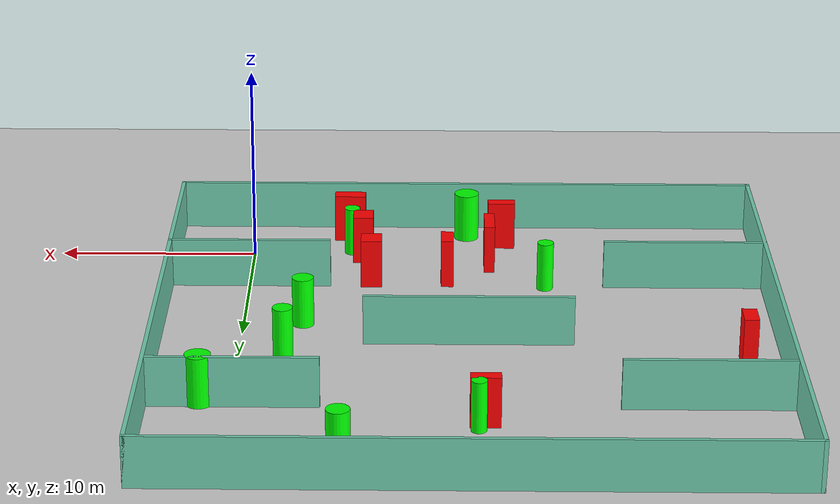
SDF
<sdf version="1.7">
 <world name="default">
  <light name="sun" type="directional">
   <pose>0 0 10 0 -0 0</pose>
   <diffuse>0.8 0.8 0.8 1</diffuse>
   <specular>0.2 0.2 0.2 1</specular>
   <attenuation>
    <range>1000</range>
    <constant>0.9</constant>
    <linear>0.01</linear>
    <quadratic>0.001</quadratic>
   </attenuation>
   <direction>-0.5 0.1 -0.9</direction>
   <spot><inner_angle>0</inner_angle><outer_angle>0</outer_angle><falloff>0</falloff></spot>
  </light>
  <model name="ground_plane">
   <static>1</static>
   <link name="link">
    <collision name="collision">
     <geometry><plane><normal>0 0 1</normal><size>100 100</size></plane></geometry>
     <surface>
      <contact><collide_bitmask>65535</collide_bitmask></contact>
      <friction><ode><mu>100</mu><mu2>50</mu2></ode></friction>
     </surface>
    </collision>
    <visual name="visual">
     <cast_shadows>0</cast_shadows>
     <geometry><plane><normal>0 0 1</normal><size>100 100</size></plane></geometry>
     <material>
      <script><uri>file://media/materials/scripts/gazebo.material</uri><name>Gazebo/Grey</name></script>
     </material>
    </visual>
   </link>
  </model>
  <gravity>0 0 -9.8</gravity>
  <magnetic_field>6e-06 2.3e-05 -4.2e-05</magnetic_field>
  <atmosphere type="adiabatic"/>
  <physics type="ode">
   <max_step_size>0.001</max_step_size>
   <real_time_factor>1</real_time_factor>
   <real_time_update_rate>1000</real_time_update_rate>
  </physics>
  <scene><ambient>0.4 0.4 0.4 1</ambient><background>0.7 0.7 0.7 1</background><shadows>1</shadows></scene>
  <spherical_coordinates>
   <surface_model>EARTH_WGS84</surface_model>
   <latitude_deg>0</latitude_deg>
   <longitude_deg>0</longitude_deg>
   <elevation>0</elevation>
   <heading_deg>0</heading_deg>
  </spherical_coordinates>
  <model name="my_base_walls">
   <link name="Wall_10">
    <collision name="Wall_10_Collision">
     <geometry><box><size>8.2 0.2 2.5</size></box></geometry>
     <pose>0 0 1.25 0 -0 0</pose>
    </collision>
    <visual name="Wall_10_Visual">
     <pose>0 0 1.25 0 -0 0</pose>
     <geometry><box><size>8.2 0.2 2.5</size></box></geometry>
     <material>
      <script><uri>file://media/materials/scripts/gazebo.material</uri><name>Gazebo/Grey</name></script>
      <ambient>0.435294 0.796078 0.67451 1</ambient>
     </material>
     <meta><layer>0</layer></meta>
    </visual>
    <pose>-11 -7 0 0 -0 0</pose>
   </link>
   <link name="Wall_12">
    <collision name="Wall_12_Collision">
     <geometry><box><size>8.2 0.2 2.5</size></box></geometry>
     <pose>0 0 1.25 0 -0 0</pose>
    </collision>
    <visual name="Wall_12_Visual">
     <pose>0 0 1.25 0 -0 0</pose>
     <geometry><box><size>8.2 0.2 2.5</size></box></geometry>
     <material>
      <script><uri>file://media/materials/scripts/gazebo.material</uri><name>Gazebo/Grey</name></script>
      <ambient>0.435294 0.796078 0.67451 1</ambient>
     </material>
     <meta><layer>0</layer></meta>
    </visual>
    <pose>-11 7 0 0 -0 0</pose>
   </link>
   <link name="Wall_14">
    <collision name="Wall_14_Collision">
     <geometry><box><size>8.2 0.2 2.5</size></box></geometry>
     <pose>0 0 1.25 0 -0 0</pose>
    </collision>
    <visual name="Wall_14_Visual">
     <pose>0 0 1.25 0 -0 0</pose>
     <geometry><box><size>8.2 0.2 2.5</size></box></geometry>
     <material>
      <script><uri>file://media/materials/scripts/gazebo.material</uri><name>Gazebo/Grey</name></script>
      <ambient>0.435294 0.796078 0.67451 1</ambient>
     </material>
     <meta><layer>0</layer></meta>
    </visual>
    <pose>11 7 0 0 -0 3.14159</pose>
   </link>
   <link name="Wall_16">
    <collision name="Wall_16_Collision">
     <geometry><box><size>10.2 0.2 2.5</size></box></geometry>
     <pose>0 0 1.25 0 -0 0</pose>
    </collision>
    <visual name="Wall_16_Visual">
     <pose>0 0 1.25 0 -0 0</pose>
     <geometry><box><size>10.2 0.2 2.5</size></box></geometry>
     <material>
      <script><uri>file://media/materials/scripts/gazebo.material</uri><name>Gazebo/Grey</name></script>
      <ambient>0.435294 0.796078 0.67451 1</ambient>
     </material>
     <meta><layer>0</layer></meta>
    </visual>
    <pose>0 0 0 0 -0 3.14159</pose>
   </link>
   <link name="Wall_2">
    <collision name="Wall_2_Collision">
     <geometry><box><size>30.2 0.2 2.5</size></box></geometry>
     <pose>0 0 1.25 0 -0 0</pose>
    </collision>
    <visual name="Wall_2_Visual">
     <pose>0 0 1.25 0 -0 0</pose>
     <geometry><box><size>30.2 0.2 2.5</size></box></geometry>
     <material>
      <script><uri>file://media/materials/scripts/gazebo.material</uri><name>Gazebo/Grey</name></script>
      <ambient>0.435294 0.796078 0.67451 1</ambient>
     </material>
     <meta><layer>0</layer></meta>
    </visual>
    <pose>0 -15 0 0 -0 3.14159</pose>
   </link>
   <link name="Wall_3">
    <collision name="Wall_3_Collision">
     <geometry><box><size>30.2 0.2 2.5</size></box></geometry>
     <pose>0 0 1.25 0 -0 0</pose>
    </collision>
    <visual name="Wall_3_Visual">
     <pose>0 0 1.25 0 -0 0</pose>
     <geometry><box><size>30.2 0.2 2.5</size></box></geometry>
     <material>
      <script><uri>file://media/materials/scripts/gazebo.material</uri><name>Gazebo/Grey</name></script>
      <ambient>0.435294 0.796078 0.67451 1</ambient>
     </material>
     <meta><layer>0</layer></meta>
    </visual>
    <pose>-15 0 0 0 -0 1.5708</pose>
   </link>
   <link name="Wall_4">
    <collision name="Wall_4_Collision">
     <geometry><box><size>30.2 0.2 2.5</size></box></geometry>
     <pose>0 0 1.25 0 -0 0</pose>
    </collision>
    <visual name="Wall_4_Visual">
     <pose>0 0 1.25 0 -0 0</pose>
     <geometry><box><size>30.2 0.2 2.5</size></box></geometry>
     <material>
      <script><uri>file://media/materials/scripts/gazebo.material</uri><name>Gazebo/Grey</name></script>
      <ambient>0.435294 0.796078 0.67451 1</ambient>
     </material>
     <meta><layer>0</layer></meta>
    </visual>
    <pose>0 15 0 0 -0 0</pose>
   </link>
   <link name="Wall_6">
    <collision name="Wall_6_Collision">
     <geometry><box><size>30.2 0.2 2.5</size></box></geometry>
     <pose>0 0 1.25 0 -0 0</pose>
    </collision>
    <visual name="Wall_6_Visual">
     <pose>0 0 1.25 0 -0 0</pose>
     <geometry><box><size>30.2 0.2 2.5</size></box></geometry>
     <material>
      <script><uri>file://media/materials/scripts/gazebo.material</uri><name>Gazebo/Grey</name></script>
      <ambient>0.435294 0.796078 0.67451 1</ambient>
     </material>
     <meta><layer>0</layer></meta>
    </visual>
    <pose>15 0 0 0 -0 1.5708</pose>
   </link>
   <link name="Wall_8">
    <collision name="Wall_8_Collision">
     <geometry><box><size>8.2 0.2 2.5</size></box></geometry>
     <pose>0 0 1.25 0 -0 0</pose>
    </collision>
    <visual name="Wall_8_Visual">
     <pose>0 0 1.25 0 -0 0</pose>
     <geometry><box><size>8.2 0.2 2.5</size></box></geometry>
     <material>
      <script><uri>file://media/materials/scripts/gazebo.material</uri><name>Gazebo/Grey</name></script>
      <ambient>0.435294 0.796078 0.67451 1</ambient>
     </material>
     <meta><layer>0</layer></meta>
    </visual>
    <pose>11 -7 0 0 -0 3.14159</pose>
   </link>
   <static>1</static>
   <pose>-11 11 0 0 -0 0</pose>
  </model>
  <model name="cylinder1">
   <static>1</static>
   <link name="link">
    <inertial>
     <mass>1</mass>
     <inertia><ixx>0.5</ixx><ixy>0</ixy><ixz>0</ixz><iyy>0.5</iyy><iyz>0</iyz><izz>1</izz></inertia>
    </inertial>
    <collision name="collision">
     <geometry><cylinder><radius>0.6315053804084734</radius><length>2.5</length></cylinder></geometry>
    </collision>
    <visual name="visual">
     <geometry><cylinder><radius>0.6315053804084734</radius><length>2.5</length></cylinder></geometry>
     <material>
      <ambient>0 1 0 1</ambient>
      <diffuse>0 1 0 1</diffuse>
      <specular>0.1 0.1 0.1 1</specular>
      <emissive>0 0 0 0</emissive>
     </material>
    </visual>
   </link>
   <pose>-11.061234428052277 -2.562973281790272 1.25 0 0 0</pose>
  </model>
  <model name="cylinder2">
   <static>1</static>
   <link name="link">
    <inertial>
     <mass>1</mass>
     <inertia><ixx>0.5</ixx><ixy>0</ixy><ixz>0</ixz><iyy>0.5</iyy><iyz>0</iyz><izz>1</izz></inertia>
    </inertial>
    <collision name="collision">
     <geometry><cylinder><radius>0.5510674711234647</radius><length>2.5</length></cylinder></geometry>
    </collision>
    <visual name="visual">
     <geometry><cylinder><radius>0.5510674711234647</radius><length>2.5</length></cylinder></geometry>
     <material>
      <ambient>0 1 0 1</ambient>
      <diffuse>0 1 0 1</diffuse>
      <specular>0.1 0.1 0.1 1</specular>
      <emissive>0 0 0 0</emissive>
     </material>
    </visual>
   </link>
   <pose>-5.113897879890075 23.285680050784254 1.25 0 0 0</pose>
  </model>
  <model name="cylinder3">
   <static>1</static>
   <link name="link">
    <inertial>
     <mass>1</mass>
     <inertia><ixx>0.5</ixx><ixy>0</ixy><ixz>0</ixz><iyy>0.5</iyy><iyz>0</iyz><izz>1</izz></inertia>
    </inertial>
    <collision name="collision">
     <geometry><cylinder><radius>0.40743915203150166</radius><length>2.5</length></cylinder></geometry>
    </collision>
    <visual name="visual">
     <geometry><cylinder><radius>0.40743915203150166</radius><length>2.5</length></cylinder></geometry>
     <material>
      <ambient>0 1 0 1</ambient>
      <diffuse>0 1 0 1</diffuse>
      <specular>0.1 0.1 0.1 1</specular>
      <emissive>0 0 0 0</emissive>
     </material>
    </visual>
   </link>
   <pose>-14.949554191562852 4.213963855530095 1.25 0 0 0</pose>
  </model>
  <model name="cylinder4">
   <static>1</static>
   <link name="link">
    <inertial>
     <mass>1</mass>
     <inertia><ixx>0.5</ixx><ixy>0</ixy><ixz>0</ixz><iyy>0.5</iyy><iyz>0</iyz><izz>1</izz></inertia>
    </inertial>
    <collision name="collision">
     <geometry><cylinder><radius>0.3708742422532085</radius><length>2.5</length></cylinder></geometry>
    </collision>
    <visual name="visual">
     <geometry><cylinder><radius>0.3708742422532085</radius><length>2.5</length></cylinder></geometry>
     <material>
      <ambient>0 1 0 1</ambient>
      <diffuse>0 1 0 1</diffuse>
      <specular>0.1 0.1 0.1 1</specular>
      <emissive>0 0 0 0</emissive>
     </material>
    </visual>
   </link>
   <pose>-11.348816625537866 20.30527383308019 1.25 0 0 0</pose>
  </model>
  <model name="cylinder5">
   <static>1</static>
   <link name="link">
    <inertial>
     <mass>1</mass>
     <inertia><ixx>0.5</ixx><ixy>0</ixy><ixz>0</ixz><iyy>0.5</iyy><iyz>0</iyz><izz>1</izz></inertia>
    </inertial>
    <collision name="collision">
     <geometry><cylinder><radius>0.48659089538482087</radius><length>2.5</length></cylinder></geometry>
    </collision>
    <visual name="visual">
     <geometry><cylinder><radius>0.48659089538482087</radius><length>2.5</length></cylinder></geometry>
     <material>
      <ambient>0 1 0 1</ambient>
      <diffuse>0 1 0 1</diffuse>
      <specular>0.1 0.1 0.1 1</specular>
      <emissive>0 0 0 0</emissive>
     </material>
    </visual>
   </link>
   <pose>-2.116269790799411 12.424792045286248 1.25 0 0 0</pose>
  </model>
  <model name="cylinder6">
   <static>1</static>
   <link name="link">
    <inertial>
     <mass>1</mass>
     <inertia><ixx>0.5</ixx><ixy>0</ixy><ixz>0</ixz><iyy>0.5</iyy><iyz>0</iyz><izz>1</izz></inertia>
    </inertial>
    <collision name="collision">
     <geometry><cylinder><radius>0.6176411073590053</radius><length>2.5</length></cylinder></geometry>
    </collision>
    <visual name="visual">
     <geometry><cylinder><radius>0.6176411073590053</radius><length>2.5</length></cylinder></geometry>
     <material>
      <ambient>0 1 0 1</ambient>
      <diffuse>0 1 0 1</diffuse>
      <specular>0.1 0.1 0.1 1</specular>
      <emissive>0 0 0 0</emissive>
     </material>
    </visual>
   </link>
   <pose>1.4790956688949706 17.742915983161094 1.25 0 0 0</pose>
  </model>
  <model name="cylinder7">
   <static>1</static>
   <link name="link">
    <inertial>
     <mass>1</mass>
     <inertia><ixx>0.5</ixx><ixy>0</ixy><ixz>0</ixz><iyy>0.5</iyy><iyz>0</iyz><izz>1</izz></inertia>
    </inertial>
    <collision name="collision">
     <geometry><cylinder><radius>0.5295806278885239</radius><length>2.5</length></cylinder></geometry>
    </collision>
    <visual name="visual">
     <geometry><cylinder><radius>0.5295806278885239</radius><length>2.5</length></cylinder></geometry>
     <material>
      <ambient>0 1 0 1</ambient>
      <diffuse>0 1 0 1</diffuse>
      <specular>0.1 0.1 0.1 1</specular>
      <emissive>0 0 0 0</emissive>
     </material>
    </visual>
   </link>
   <pose>-2.919919992550188 8.798849691047216 1.25 0 0 0</pose>
  </model>
  <model name="cylinder8">
   <static>1</static>
   <link name="link">
    <inertial>
     <mass>1</mass>
     <inertia><ixx>0.5</ixx><ixy>0</ixy><ixz>0</ixz><iyy>0.5</iyy><iyz>0</iyz><izz>1</izz></inertia>
    </inertial>
    <collision name="collision">
     <geometry><cylinder><radius>0.3952815654011848</radius><length>2.5</length></cylinder></geometry>
    </collision>
    <visual name="visual">
     <geometry><cylinder><radius>0.3952815654011848</radius><length>2.5</length></cylinder></geometry>
     <material>
      <ambient>0 1 0 1</ambient>
      <diffuse>0 1 0 1</diffuse>
      <specular>0.1 0.1 0.1 1</specular>
      <emissive>0 0 0 0</emissive>
     </material>
    </visual>
   </link>
   <pose>-5.087689831597336 -0.38788446746256744 1.25 0 0 0</pose>
  </model>
  <model name="box1">
   <static>1</static>
   <link name="link">
    <inertial>
     <mass>1</mass>
     <inertia><ixx>0.083</ixx><ixy>0</ixy><ixz>0</ixz><iyy>0.083</iyy><iyz>0</iyz><izz>0.083</izz></inertia>
    </inertial>
    <collision name="collision">
     <geometry><box><size>1.6065470380157307 0.7142060980705625 2.5</size></box></geometry>
    </collision>
    <visual name="visual">
     <geometry><box><size>1.6065470380157307 0.7142060980705625 2.5</size></box></geometry>
     <material>
      <ambient>1 0 0 1</ambient>
      <diffuse>1 0 0 1</diffuse>
      <specular>0.1 0.1 0.1 1</specular>
      <emissive>0 0 0 0</emissive>
     </material>
    </visual>
    <sensor name="my_contact" type="contact">
     <contact><collision>box_collision</collision><topic>__default_topic__</topic></contact>
    </sensor>
   </link>
   <pose>-4.93653204086333 -2.314276501903354 1.25 0 0 0</pose>
  </model>
  <model name="box2">
   <static>1</static>
   <link name="link">
    <inertial>
     <mass>1</mass>
     <inertia><ixx>0.083</ixx><ixy>0</ixy><ixz>0</ixz><iyy>0.083</iyy><iyz>0</iyz><izz>0.083</izz></inertia>
    </inertial>
    <collision name="collision">
     <geometry><box><size>1.4160765201291037 0.588481815870615 2.5</size></box></geometry>
    </collision>
    <visual name="visual">
     <geometry><box><size>1.4160765201291037 0.588481815870615 2.5</size></box></geometry>
     <material>
      <ambient>1 0 0 1</ambient>
      <diffuse>1 0 0 1</diffuse>
      <specular>0.1 0.1 0.1 1</specular>
      <emissive>0 0 0 0</emissive>
     </material>
    </visual>
    <sensor name="my_contact" type="contact">
     <contact><collision>box_collision</collision><topic>__default_topic__</topic></contact>
    </sensor>
   </link>
   <pose>-11.653715687152102 19.79128903680072 1.25 0 0 0</pose>
  </model>
  <model name="box3">
   <static>1</static>
   <link name="link">
    <inertial>
     <mass>1</mass>
     <inertia><ixx>0.083</ixx><ixy>0</ixy><ixz>0</ixz><iyy>0.083</iyy><iyz>0</iyz><izz>0.083</izz></inertia>
    </inertial>
    <collision name="collision">
     <geometry><box><size>1.0304048507049433 1.1290630580004515 2.5</size></box></geometry>
    </collision>
    <visual name="visual">
     <geometry><box><size>1.0304048507049433 1.1290630580004515 2.5</size></box></geometry>
     <material>
      <ambient>1 0 0 1</ambient>
      <diffuse>1 0 0 1</diffuse>
      <specular>0.1 0.1 0.1 1</specular>
      <emissive>0 0 0 0</emissive>
     </material>
    </visual>
    <sensor name="my_contact" type="contact">
     <contact><collision>box_collision</collision><topic>__default_topic__</topic></contact>
    </sensor>
   </link>
   <pose>-5.678392780278527 0.4686203860508318 1.25 0 0 0</pose>
  </model>
  <model name="box4">
   <static>1</static>
   <link name="link">
    <inertial>
     <mass>1</mass>
     <inertia><ixx>0.083</ixx><ixy>0</ixy><ixz>0</ixz><iyy>0.083</iyy><iyz>0</iyz><izz>0.083</izz></inertia>
    </inertial>
    <collision name="collision">
     <geometry><box><size>1.3953969990105972 0.6018595497639647 2.5</size></box></geometry>
    </collision>
    <visual name="visual">
     <geometry><box><size>1.3953969990105972 0.6018595497639647 2.5</size></box></geometry>
     <material>
      <ambient>1 0 0 1</ambient>
      <diffuse>1 0 0 1</diffuse>
      <specular>0.1 0.1 0.1 1</specular>
      <emissive>0 0 0 0</emissive>
     </material>
    </visual>
    <sensor name="my_contact" type="contact">
     <contact><collision>box_collision</collision><topic>__default_topic__</topic></contact>
    </sensor>
   </link>
   <pose>-12.857864552791085 -1.3262197704303844 1.25 0 0 0</pose>
  </model>
  <model name="box5">
   <static>1</static>
   <link name="link">
    <inertial>
     <mass>1</mass>
     <inertia><ixx>0.083</ixx><ixy>0</ixy><ixz>0</ixz><iyy>0.083</iyy><iyz>0</iyz><izz>0.083</izz></inertia>
    </inertial>
    <collision name="collision">
     <geometry><box><size>0.6316530655851965 1.3081666875113926 2.5</size></box></geometry>
    </collision>
    <visual name="visual">
     <geometry><box><size>0.6316530655851965 1.3081666875113926 2.5</size></box></geometry>
     <material>
      <ambient>1 0 0 1</ambient>
      <diffuse>1 0 0 1</diffuse>
      <specular>0.1 0.1 0.1 1</specular>
      <emissive>0 0 0 0</emissive>
     </material>
    </visual>
    <sensor name="my_contact" type="contact">
     <contact><collision>box_collision</collision><topic>__default_topic__</topic></contact>
    </sensor>
   </link>
   <pose>-10.00582433575278 3.4573168199233937 1.25 0 0 0</pose>
  </model>
  <model name="box6">
   <static>1</static>
   <link name="link">
    <inertial>
     <mass>1</mass>
     <inertia><ixx>0.083</ixx><ixy>0</ixy><ixz>0</ixz><iyy>0.083</iyy><iyz>0</iyz><izz>0.083</izz></inertia>
    </inertial>
    <collision name="collision">
     <geometry><box><size>0.7174984203414422 1.3484334735370775 2.5</size></box></geometry>
    </collision>
    <visual name="visual">
     <geometry><box><size>0.7174984203414422 1.3484334735370775 2.5</size></box></geometry>
     <material>
      <ambient>1 0 0 1</ambient>
      <diffuse>1 0 0 1</diffuse>
      <specular>0.1 0.1 0.1 1</specular>
      <emissive>0 0 0 0</emissive>
     </material>
    </visual>
    <sensor name="my_contact" type="contact">
     <contact><collision>box_collision</collision><topic>__default_topic__</topic></contact>
    </sensor>
   </link>
   <pose>-24.270971510047396 12.934095292999293 1.25 0 0 0</pose>
  </model>
  <model name="box7">
   <static>1</static>
   <link name="link">
    <inertial>
     <mass>1</mass>
     <inertia><ixx>0.083</ixx><ixy>0</ixy><ixz>0</ixz><iyy>0.083</iyy><iyz>0</iyz><izz>0.083</izz></inertia>
    </inertial>
    <collision name="collision">
     <geometry><box><size>1.0587560504484195 1.0856922151881367 2.5</size></box></geometry>
    </collision>
    <visual name="visual">
     <geometry><box><size>1.0587560504484195 1.0856922151881367 2.5</size></box></geometry>
     <material>
      <ambient>1 0 0 1</ambient>
      <diffuse>1 0 0 1</diffuse>
      <specular>0.1 0.1 0.1 1</specular>
      <emissive>0 0 0 0</emissive>
     </material>
    </visual>
    <sensor name="my_contact" type="contact">
     <contact><collision>box_collision</collision><topic>__default_topic__</topic></contact>
    </sensor>
   </link>
   <pose>-6.165306575490055 3.651613973238418 1.25 0 0 0</pose>
  </model>
  <model name="box8">
   <static>1</static>
   <link name="link">
    <inertial>
     <mass>1</mass>
     <inertia><ixx>0.083</ixx><ixy>0</ixy><ixz>0</ixz><iyy>0.083</iyy><iyz>0</iyz><izz>0.083</izz></inertia>
    </inertial>
    <collision name="collision">
     <geometry><box><size>0.5349065700806561 1.9261592970016654 2.5</size></box></geometry>
    </collision>
    <visual name="visual">
     <geometry><box><size>0.5349065700806561 1.9261592970016654 2.5</size></box></geometry>
     <material>
      <ambient>1 0 0 1</ambient>
      <diffuse>1 0 0 1</diffuse>
      <specular>0.1 0.1 0.1 1</specular>
      <emissive>0 0 0 0</emissive>
     </material>
    </visual>
    <sensor name="my_contact" type="contact">
     <contact><collision>box_collision</collision><topic>__default_topic__</topic></contact>
    </sensor>
   </link>
   <pose>-12.182232954510772 1.2329996856795145 1.25 0 0 0</pose>
  </model>
 </world>
</sdf>
